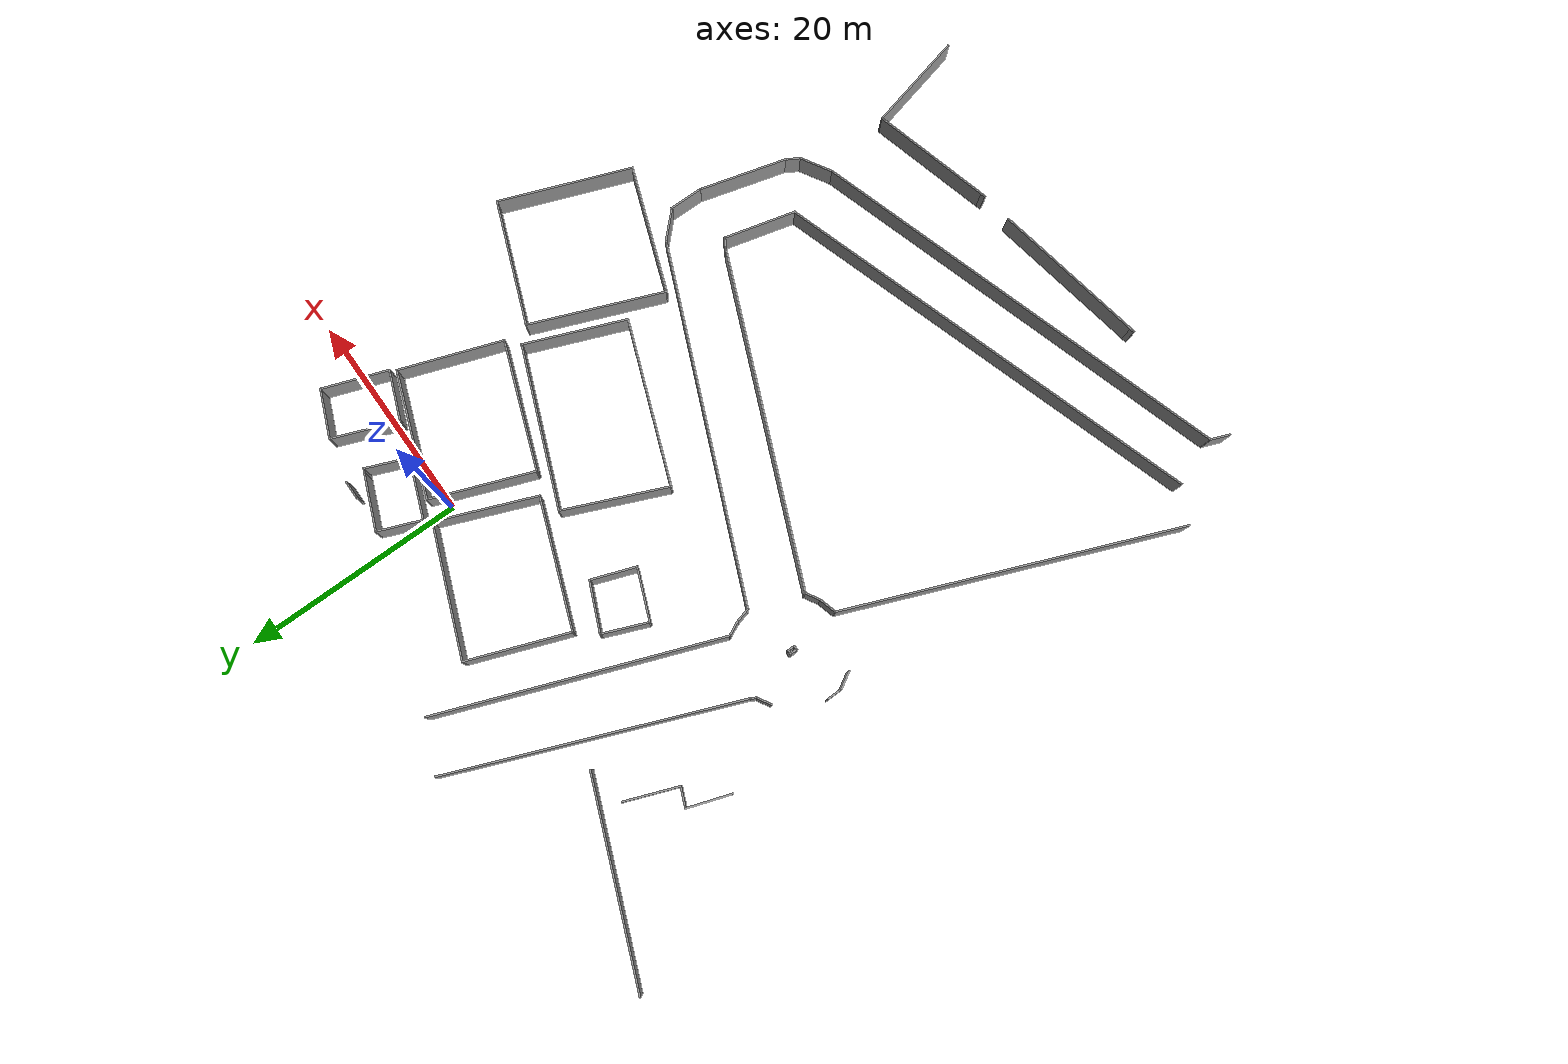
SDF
<sdf version="1.6">
 <model name="palazzo2">
  <pose>-3.81107 -3.99805 0 0 -0 0</pose>
  <link name="Wall_129">
   <collision name="Wall_129_Collision">
    <geometry><box><size>1.75 0.15 2.5</size></box></geometry>
    <pose>0 0 1.25 0 -0 0</pose>
   </collision>
   <visual name="Wall_129_Visual">
    <pose>0 0 1.25 0 -0 0</pose>
    <geometry><box><size>1.75 0.15 2.5</size></box></geometry>
    <material>
     <script><uri>file://media/materials/scripts/gazebo.material</uri><name>Gazebo/Grey</name></script>
     <ambient>1 1 1 1</ambient>
    </material>
    <meta><layer>0</layer></meta>
   </visual>
   <pose>9.46425 9.98705 0 0 -0 3.14159</pose>
  </link>
  <link name="Wall_164">
   <collision name="Wall_164_Collision">
    <geometry><box><size>25.8072 0.15 2.5</size></box></geometry>
    <pose>0 0 1.25 0 -0 0</pose>
   </collision>
   <visual name="Wall_164_Visual">
    <pose>0 0 1.25 0 -0 0</pose>
    <geometry><box><size>25.8072 0.15 2.5</size></box></geometry>
    <material>
     <script><uri>file://media/materials/scripts/gazebo.material</uri><name>Gazebo/Grey</name></script>
     <ambient>1 1 1 1</ambient>
    </material>
    <meta><layer>0</layer></meta>
   </visual>
   <pose>-14.7527 3.22891 0 0 -0 1.2068</pose>
  </link>
  <link name="Wall_166">
   <collision name="Wall_166_Collision">
    <geometry><box><size>26.3375 0.15 2.5</size></box></geometry>
    <pose>0 0 1.25 0 -0 0</pose>
   </collision>
   <visual name="Wall_166_Visual">
    <pose>0 0 1.25 0 -0 0</pose>
    <geometry><box><size>26.3375 0.15 2.5</size></box></geometry>
    <material>
     <script><uri>file://media/materials/scripts/gazebo.material</uri><name>Gazebo/Grey</name></script>
     <ambient>1 1 1 1</ambient>
    </material>
    <meta><layer>0</layer></meta>
   </visual>
   <pose>-19.5581 4.98848 0 0 -0 1.18688</pose>
  </link>
  <link name="Wall_169">
   <collision name="Wall_169_Collision">
    <geometry><box><size>1.5 0.15 2.5</size></box></geometry>
    <pose>0 0 1.25 0 -0 0</pose>
   </collision>
   <visual name="Wall_169_Visual">
    <pose>0 0 1.25 0 -0 0</pose>
    <geometry><box><size>1.5 0.15 2.5</size></box></geometry>
    <material>
     <script><uri>file://media/materials/scripts/gazebo.material</uri><name>Gazebo/Grey</name></script>
     <ambient>1 1 1 1</ambient>
    </material>
    <meta><layer>0</layer></meta>
   </visual>
   <pose>-18.5765 -10.6095 0 0 -0 1.8326</pose>
  </link>
  <link name="Wall_170">
   <collision name="Wall_170_Collision">
    <geometry><box><size>1.47641 0.15 2.5</size></box></geometry>
    <pose>0 0 1.25 0 -0 0</pose>
   </collision>
   <visual name="Wall_170_Visual">
    <pose>0 0 1.25 0 -0 0</pose>
    <geometry><box><size>1.47641 0.15 2.5</size></box></geometry>
    <material>
     <script><uri>file://media/materials/scripts/gazebo.material</uri><name>Gazebo/Grey</name></script>
     <ambient>1 1 1 1</ambient>
    </material>
    <meta><layer>0</layer></meta>
   </visual>
   <pose>-19.0355 -9.35834 0 0 -0 2.01381</pose>
  </link>
  <link name="Wall_172">
   <collision name="Wall_172_Collision">
    <geometry><box><size>33.7639 0.15 2.5</size></box></geometry>
    <pose>0 0 1.25 0 -0 0</pose>
   </collision>
   <visual name="Wall_172_Visual">
    <pose>0 0 1.25 0 -0 0</pose>
    <geometry><box><size>33.7639 0.15 2.5</size></box></geometry>
    <material>
     <script><uri>file://media/materials/scripts/gazebo.material</uri><name>Gazebo/Grey</name></script>
     <ambient>1 1 1 1</ambient>
    </material>
    <meta><layer>0</layer></meta>
   </visual>
   <pose>-2.99951 -17.9878 0 0 -0 2.72985</pose>
  </link>
  <link name="Wall_174">
   <collision name="Wall_174_Collision">
    <geometry><box><size>1.75 0.15 2.5</size></box></geometry>
    <pose>0 0 1.25 0 -0 0</pose>
   </collision>
   <visual name="Wall_174_Visual">
    <pose>0 0 1.25 0 -0 0</pose>
    <geometry><box><size>1.75 0.15 2.5</size></box></geometry>
    <material>
     <script><uri>file://media/materials/scripts/gazebo.material</uri><name>Gazebo/Grey</name></script>
     <ambient>1 1 1 1</ambient>
    </material>
    <meta><layer>0</layer></meta>
   </visual>
   <pose>-22.0611 -16.8174 0 0 -0 0.261799</pose>
  </link>
  <link name="Wall_175">
   <collision name="Wall_175_Collision">
    <geometry><box><size>1.5 0.15 2.5</size></box></geometry>
    <pose>0 0 1.25 0 -0 0</pose>
   </collision>
   <visual name="Wall_175_Visual">
    <pose>0 0 1.25 0 -0 0</pose>
    <geometry><box><size>1.5 0.15 2.5</size></box></geometry>
    <material>
     <script><uri>file://media/materials/scripts/gazebo.material</uri><name>Gazebo/Grey</name></script>
     <ambient>1 1 1 1</ambient>
    </material>
    <meta><layer>0</layer></meta>
   </visual>
   <pose>-20.7038 -16.2728 0 0 -0 0.523599</pose>
  </link>
  <link name="Wall_177">
   <collision name="Wall_177_Collision">
    <geometry><box><size>31.4883 0.15 2.5</size></box></geometry>
    <pose>0 0 1.25 0 -0 0</pose>
   </collision>
   <visual name="Wall_177_Visual">
    <pose>0 0 1.25 0 -0 0</pose>
    <geometry><box><size>31.4883 0.15 2.5</size></box></geometry>
    <material>
     <script><uri>file://media/materials/scripts/gazebo.material</uri><name>Gazebo/Grey</name></script>
     <ambient>1 1 1 1</ambient>
    </material>
    <meta><layer>0</layer></meta>
   </visual>
   <pose>-5.76607 -22.2208 0 0 -0 2.72883</pose>
  </link>
  <link name="Wall_179">
   <collision name="Wall_179_Collision">
    <geometry><box><size>1.25 0.15 2.5</size></box></geometry>
    <pose>0 0 1.25 0 -0 0</pose>
   </collision>
   <visual name="Wall_179_Visual">
    <pose>0 0 1.25 0 -0 0</pose>
    <geometry><box><size>1.25 0.15 2.5</size></box></geometry>
    <material>
     <script><uri>file://media/materials/scripts/gazebo.material</uri><name>Gazebo/Grey</name></script>
     <ambient>1 1 1 1</ambient>
    </material>
    <meta><layer>0</layer></meta>
   </visual>
   <pose>9.06344 -28.7813 0 0 -0 -0.523599</pose>
  </link>
  <link name="Wall_181">
   <collision name="Wall_181_Collision">
    <geometry><box><size>6.84317 0.15 2.5</size></box></geometry>
    <pose>0 0 1.25 0 -0 0</pose>
   </collision>
   <visual name="Wall_181_Visual">
    <pose>0 0 1.25 0 -0 0</pose>
    <geometry><box><size>6.84317 0.15 2.5</size></box></geometry>
    <material>
     <script><uri>file://media/materials/scripts/gazebo.material</uri><name>Gazebo/Grey</name></script>
     <ambient>1 1 1 1</ambient>
    </material>
    <meta><layer>0</layer></meta>
   </visual>
   <pose>8.72373 -32.3019 0 0 -0 1.32448</pose>
  </link>
  <link name="Wall_183">
   <collision name="Wall_183_Collision">
    <geometry><box><size>3.25 0.15 2.5</size></box></geometry>
    <pose>0 0 1.25 0 -0 0</pose>
   </collision>
   <visual name="Wall_183_Visual">
    <pose>0 0 1.25 0 -0 0</pose>
    <geometry><box><size>3.25 0.15 2.5</size></box></geometry>
    <material>
     <script><uri>file://media/materials/scripts/gazebo.material</uri><name>Gazebo/Grey</name></script>
     <ambient>1 1 1 1</ambient>
    </material>
    <meta><layer>0</layer></meta>
   </visual>
   <pose>13.4988 -25.8101 0 0 -0 -0.785398</pose>
  </link>
  <link name="Wall_186">
   <collision name="Wall_186_Collision">
    <geometry><box><size>3.25 0.15 2.5</size></box></geometry>
    <pose>0 0 1.25 0 -0 0</pose>
   </collision>
   <visual name="Wall_186_Visual">
    <pose>0 0 1.25 0 -0 0</pose>
    <geometry><box><size>3.25 0.15 2.5</size></box></geometry>
    <material>
     <script><uri>file://media/materials/scripts/gazebo.material</uri><name>Gazebo/Grey</name></script>
     <ambient>1 1 1 1</ambient>
    </material>
    <meta><layer>0</layer></meta>
   </visual>
   <pose>14.5948 -28.4562 0 0 -0 -1.5708</pose>
  </link>
  <link name="Wall_188">
   <collision name="Wall_188_Collision">
    <geometry><box><size>8.31738 0.15 2.5</size></box></geometry>
    <pose>0 0 1.25 0 -0 0</pose>
   </collision>
   <visual name="Wall_188_Visual">
    <pose>0 0 1.25 0 -0 0</pose>
    <geometry><box><size>8.31738 0.15 2.5</size></box></geometry>
    <material>
     <script><uri>file://media/materials/scripts/gazebo.material</uri><name>Gazebo/Grey</name></script>
     <ambient>1 1 1 1</ambient>
    </material>
    <meta><layer>0</layer></meta>
   </visual>
   <pose>13.5365 -33.9504 0 0 -0 1.30866</pose>
  </link>
  <link name="Wall_193">
   <collision name="Wall_193_Collision">
    <geometry><box><size>1.5 0.15 2.5</size></box></geometry>
    <pose>0 0 1.25 0 -0 0</pose>
   </collision>
   <visual name="Wall_193_Visual">
    <pose>0 0 1.25 0 -0 0</pose>
    <geometry><box><size>1.5 0.15 2.5</size></box></geometry>
    <material>
     <script><uri>file://media/materials/scripts/gazebo.material</uri><name>Gazebo/Grey</name></script>
     <ambient>1 1 1 1</ambient>
    </material>
    <meta><layer>0</layer></meta>
   </visual>
   <pose>12.1408 -38.4791 0 0 -0 -2.0944</pose>
  </link>
  <link name="Wall_194">
   <collision name="Wall_194_Collision">
    <geometry><box><size>3.25 0.15 2.5</size></box></geometry>
    <pose>0 0 1.25 0 -0 0</pose>
   </collision>
   <visual name="Wall_194_Visual">
    <pose>0 0 1.25 0 -0 0</pose>
    <geometry><box><size>3.25 0.15 2.5</size></box></geometry>
    <material>
     <script><uri>file://media/materials/scripts/gazebo.material</uri><name>Gazebo/Grey</name></script>
     <ambient>1 1 1 1</ambient>
    </material>
    <meta><layer>0</layer></meta>
   </visual>
   <pose>10.4609 -39.8387 0 0 -0 -2.61799</pose>
  </link>
  <link name="Wall_196">
   <collision name="Wall_196_Collision">
    <geometry><box><size>40.6217 0.15 2.5</size></box></geometry>
    <pose>0 0 1.25 0 -0 0</pose>
   </collision>
   <visual name="Wall_196_Visual">
    <pose>0 0 1.25 0 -0 0</pose>
    <geometry><box><size>40.6217 0.15 2.5</size></box></geometry>
    <material>
     <script><uri>file://media/materials/scripts/gazebo.material</uri><name>Gazebo/Grey</name></script>
     <ambient>1 1 1 1</ambient>
    </material>
    <meta><layer>0</layer></meta>
   </visual>
   <pose>-10.3171 -46.2477 0 0 -0 0.282148</pose>
  </link>
  <link name="Wall_198">
   <collision name="Wall_198_Collision">
    <geometry><box><size>41.1187 0.15 2.5</size></box></geometry>
    <pose>0 0 1.25 0 -0 0</pose>
   </collision>
   <visual name="Wall_198_Visual">
    <pose>0 0 1.25 0 -0 0</pose>
    <geometry><box><size>41.1187 0.15 2.5</size></box></geometry>
    <material>
     <script><uri>file://media/materials/scripts/gazebo.material</uri><name>Gazebo/Grey</name></script>
     <ambient>1 1 1 1</ambient>
    </material>
    <meta><layer>0</layer></meta>
   </visual>
   <pose>-11.708 -41.4495 0 0 -0 0.292263</pose>
  </link>
  <link name="Wall_203">
   <collision name="Wall_203_Collision">
    <geometry><box><size>30.9517 0.15 2.5</size></box></geometry>
    <pose>0 0 1.25 0 -0 0</pose>
   </collision>
   <visual name="Wall_203_Visual">
    <pose>0 0 1.25 0 -0 0</pose>
    <geometry><box><size>30.9517 0.15 2.5</size></box></geometry>
    <material>
     <script><uri>file://media/materials/scripts/gazebo.material</uri><name>Gazebo/Grey</name></script>
     <ambient>1 1 1 1</ambient>
    </material>
    <meta><layer>0</layer></meta>
   </visual>
   <pose>-28.6263 -31.2945 0 0 -0 1.1852</pose>
  </link>
  <link name="Wall_206">
   <collision name="Wall_206_Collision">
    <geometry><box><size>1.5 0.15 2.5</size></box></geometry>
    <pose>0 0 1.25 0 -0 0</pose>
   </collision>
   <visual name="Wall_206_Visual">
    <pose>0 0 1.25 0 -0 0</pose>
    <geometry><box><size>1.5 0.15 2.5</size></box></geometry>
    <material>
     <script><uri>file://media/materials/scripts/gazebo.material</uri><name>Gazebo/Grey</name></script>
     <ambient>1 1 1 1</ambient>
    </material>
    <meta><layer>0</layer></meta>
   </visual>
   <pose>-25.2953 -7.91 0 0 -0 0.523599</pose>
  </link>
  <link name="Wall_208">
   <collision name="Wall_208_Collision">
    <geometry><box><size>0.638277 0.15 2.5</size></box></geometry>
    <pose>0 0 1.25 0 -0 0</pose>
   </collision>
   <visual name="Wall_208_Visual">
    <pose>0 0 1.25 0 -0 0</pose>
    <geometry><box><size>0.638277 0.15 2.5</size></box></geometry>
    <material>
     <script><uri>file://media/materials/scripts/gazebo.material</uri><name>Gazebo/Grey</name></script>
     <ambient>1 1 1 1</ambient>
    </material>
    <meta><layer>0</layer></meta>
   </visual>
   <pose>-24.5865 -7.3623 0 0 -0 1.03724</pose>
  </link>
  <link name="Wall_217">
   <collision name="Wall_217_Collision">
    <geometry><box><size>1.75 0.15 2.5</size></box></geometry>
    <pose>0 0 1.25 0 -0 0</pose>
   </collision>
   <visual name="Wall_217_Visual">
    <pose>0 0 1.25 0 -0 0</pose>
    <geometry><box><size>1.75 0.15 2.5</size></box></geometry>
    <material>
     <script><uri>file://media/materials/scripts/gazebo.material</uri><name>Gazebo/Grey</name></script>
     <ambient>1 1 1 1</ambient>
    </material>
    <meta><layer>0</layer></meta>
   </visual>
   <pose>-27.8139 -14.302 0 0 -0 2.0944</pose>
  </link>
  <link name="Wall_218">
   <collision name="Wall_218_Collision">
    <geometry><box><size>1.5 0.15 2.5</size></box></geometry>
    <pose>0 0 1.25 0 -0 0</pose>
   </collision>
   <visual name="Wall_218_Visual">
    <pose>0 0 1.25 0 -0 0</pose>
    <geometry><box><size>1.5 0.15 2.5</size></box></geometry>
    <material>
     <script><uri>file://media/materials/scripts/gazebo.material</uri><name>Gazebo/Grey</name></script>
     <ambient>1 1 1 1</ambient>
    </material>
    <meta><layer>0</layer></meta>
   </visual>
   <pose>-28.214 -12.9342 0 0 -0 1.5708</pose>
  </link>
  <link name="Wall_236">
   <collision name="Wall_236_Collision">
    <geometry><box><size>0.5 0.15 2.5</size></box></geometry>
    <pose>0 0 1.25 0 -0 0</pose>
   </collision>
   <visual name="Wall_236_Visual">
    <pose>0 0 1.25 0 -0 0</pose>
    <geometry><box><size>0.5 0.15 2.5</size></box></geometry>
    <material>
     <script><uri>file://media/materials/scripts/gazebo.material</uri><name>Gazebo/Grey</name></script>
     <ambient>1 1 1 1</ambient>
    </material>
    <meta><layer>0</layer></meta>
   </visual>
   <pose>-23.2961 -11.9622 0 0 -0 0</pose>
  </link>
  <link name="Wall_237">
   <collision name="Wall_237_Collision">
    <geometry><box><size>0.75 0.15 2.5</size></box></geometry>
    <pose>0 0 1.25 0 -0 0</pose>
   </collision>
   <visual name="Wall_237_Visual">
    <pose>0 0 1.25 0 -0 0</pose>
    <geometry><box><size>0.75 0.15 2.5</size></box></geometry>
    <material>
     <script><uri>file://media/materials/scripts/gazebo.material</uri><name>Gazebo/Grey</name></script>
     <ambient>1 1 1 1</ambient>
    </material>
    <meta><layer>0</layer></meta>
   </visual>
   <pose>-23.1211 -12.2622 0 0 -0 -1.5708</pose>
  </link>
  <link name="Wall_238">
   <collision name="Wall_238_Collision">
    <geometry><box><size>0.5 0.15 2.5</size></box></geometry>
    <pose>0 0 1.25 0 -0 0</pose>
   </collision>
   <visual name="Wall_238_Visual">
    <pose>0 0 1.25 0 -0 0</pose>
    <geometry><box><size>0.5 0.15 2.5</size></box></geometry>
    <material>
     <script><uri>file://media/materials/scripts/gazebo.material</uri><name>Gazebo/Grey</name></script>
     <ambient>1 1 1 1</ambient>
    </material>
    <meta><layer>0</layer></meta>
   </visual>
   <pose>-23.2961 -12.5622 0 0 -0 3.14159</pose>
  </link>
  <link name="Wall_239">
   <collision name="Wall_239_Collision">
    <geometry><box><size>0.75 0.15 2.5</size></box></geometry>
    <pose>0 0 1.25 0 -0 0</pose>
   </collision>
   <visual name="Wall_239_Visual">
    <pose>0 0 1.25 0 -0 0</pose>
    <geometry><box><size>0.75 0.15 2.5</size></box></geometry>
    <material>
     <script><uri>file://media/materials/scripts/gazebo.material</uri><name>Gazebo/Grey</name></script>
     <ambient>1 1 1 1</ambient>
    </material>
    <meta><layer>0</layer></meta>
   </visual>
   <pose>-23.4711 -12.2622 0 0 -0 1.5708</pose>
  </link>
  <link name="Wall_294">
   <collision name="Wall_294_Collision">
    <geometry><box><size>1.90529 0.15 2.5</size></box></geometry>
    <pose>0 0 1.25 0 -0 0</pose>
   </collision>
   <visual name="Wall_294_Visual">
    <pose>0 0 1.25 0 -0 0</pose>
    <geometry><box><size>1.90529 0.15 2.5</size></box></geometry>
    <material>
     <script><uri>file://media/materials/scripts/gazebo.material</uri><name>Gazebo/Grey</name></script>
     <ambient>1 1 1 1</ambient>
    </material>
    <meta><layer>0</layer></meta>
   </visual>
   <pose>-30.0784 -52.6968 0 0 -0 1.19074</pose>
  </link>
  <link name="Wall_527">
   <collision name="Wall_527_Collision">
    <geometry><box><size>0.25 0.15 2.5</size></box></geometry>
    <pose>0 0 1.25 0 -0 0</pose>
   </collision>
   <visual name="Wall_527_Visual">
    <pose>0 0 1.25 0 -0 0</pose>
    <geometry><box><size>0.25 0.15 2.5</size></box></geometry>
    <material>
     <script><uri>file://media/materials/scripts/gazebo.material</uri><name>Gazebo/Grey</name></script>
     <ambient>1 1 1 1</ambient>
    </material>
    <meta><layer>0</layer></meta>
   </visual>
   <pose>14.401 9.09696 0 0 -0 -0.261799</pose>
  </link>
  <link name="Wall_529">
   <collision name="Wall_529_Collision">
    <geometry><box><size>4.72201 0.15 2.5</size></box></geometry>
    <pose>0 0 1.25 0 -0 0</pose>
   </collision>
   <visual name="Wall_529_Visual">
    <pose>0 0 1.25 0 -0 0</pose>
    <geometry><box><size>4.72201 0.15 2.5</size></box></geometry>
    <material>
     <script><uri>file://media/materials/scripts/gazebo.material</uri><name>Gazebo/Grey</name></script>
     <ambient>1 1 1 1</ambient>
    </material>
    <meta><layer>0</layer></meta>
   </visual>
   <pose>16.472 8.25292 0 0 -0 2.75732</pose>
  </link>
  <link name="Wall_531">
   <collision name="Wall_531_Collision">
    <geometry><box><size>6.245 0.15 2.5</size></box></geometry>
    <pose>0 0 1.25 0 -0 0</pose>
   </collision>
   <visual name="Wall_531_Visual">
    <pose>0 0 1.25 0 -0 0</pose>
    <geometry><box><size>6.245 0.15 2.5</size></box></geometry>
    <material>
     <script><uri>file://media/materials/scripts/gazebo.material</uri><name>Gazebo/Grey</name></script>
     <ambient>1 1 1 1</ambient>
    </material>
    <meta><layer>0</layer></meta>
   </visual>
   <pose>17.5722 4.52389 0 0 -0 1.22982</pose>
  </link>
  <link name="Wall_533">
   <collision name="Wall_533_Collision">
    <geometry><box><size>6.29627 0.15 2.5</size></box></geometry>
    <pose>0 0 1.25 0 -0 0</pose>
   </collision>
   <visual name="Wall_533_Visual">
    <pose>0 0 1.25 0 -0 0</pose>
    <geometry><box><size>6.29627 0.15 2.5</size></box></geometry>
    <material>
     <script><uri>file://media/materials/scripts/gazebo.material</uri><name>Gazebo/Grey</name></script>
     <ambient>1 1 1 1</ambient>
    </material>
    <meta><layer>0</layer></meta>
   </visual>
   <pose>13.2294 6.24944 0 0 -0 1.19659</pose>
  </link>
  <link name="Wall_535">
   <collision name="Wall_535_Collision">
    <geometry><box><size>4.92429 0.15 2.5</size></box></geometry>
    <pose>0 0 1.25 0 -0 0</pose>
   </collision>
   <visual name="Wall_535_Visual">
    <pose>0 0 1.25 0 -0 0</pose>
    <geometry><box><size>4.92429 0.15 2.5</size></box></geometry>
    <material>
     <script><uri>file://media/materials/scripts/gazebo.material</uri><name>Gazebo/Grey</name></script>
     <ambient>1 1 1 1</ambient>
    </material>
    <meta><layer>0</layer></meta>
   </visual>
   <pose>14.3296 2.5204 0 0 -0 -0.372398</pose>
  </link>
  <link name="Wall_540">
   <collision name="Wall_540_Collision">
    <geometry><box><size>5.33922 0.15 2.5</size></box></geometry>
    <pose>0 0 1.25 0 -0 0</pose>
   </collision>
   <visual name="Wall_540_Visual">
    <pose>0 0 1.25 0 -0 0</pose>
    <geometry><box><size>5.33922 0.15 2.5</size></box></geometry>
    <material>
     <script><uri>file://media/materials/scripts/gazebo.material</uri><name>Gazebo/Grey</name></script>
     <ambient>1 1 1 1</ambient>
    </material>
    <meta><layer>0</layer></meta>
   </visual>
   <pose>7.61424 9.28458 0 0 -0 2.76248</pose>
  </link>
  <link name="Wall_543">
   <collision name="Wall_543_Collision">
    <geometry><box><size>4.21504 0.15 2.5</size></box></geometry>
    <pose>0 0 1.25 0 -0 0</pose>
   </collision>
   <visual name="Wall_543_Visual">
    <pose>0 0 1.25 0 -0 0</pose>
    <geometry><box><size>4.21504 0.15 2.5</size></box></geometry>
    <material>
     <script><uri>file://media/materials/scripts/gazebo.material</uri><name>Gazebo/Grey</name></script>
     <ambient>1 1 1 1</ambient>
    </material>
    <meta><layer>0</layer></meta>
   </visual>
   <pose>4.44922 8.35759 0 0 -0 1.1904</pose>
  </link>
  <link name="Wall_545">
   <collision name="Wall_545_Collision">
    <geometry><box><size>0.58298 0.15 2.5</size></box></geometry>
    <pose>0 0 1.25 0 -0 0</pose>
   </collision>
   <visual name="Wall_545_Visual">
    <pose>0 0 1.25 0 -0 0</pose>
    <geometry><box><size>0.58298 0.15 2.5</size></box></geometry>
    <material>
     <script><uri>file://media/materials/scripts/gazebo.material</uri><name>Gazebo/Grey</name></script>
     <ambient>1 1 1 1</ambient>
    </material>
    <meta><layer>0</layer></meta>
   </visual>
   <pose>10.2233 8.23826 0 0 -0 2.73269</pose>
  </link>
  <link name="Wall_547">
   <collision name="Wall_547_Collision">
    <geometry><box><size>4.124 0.15 2.5</size></box></geometry>
    <pose>0 0 1.25 0 -0 0</pose>
   </collision>
   <visual name="Wall_547_Visual">
    <pose>0 0 1.25 0 -0 0</pose>
    <geometry><box><size>4.124 0.15 2.5</size></box></geometry>
    <material>
     <script><uri>file://media/materials/scripts/gazebo.material</uri><name>Gazebo/Grey</name></script>
     <ambient>1 1 1 1</ambient>
    </material>
    <meta><layer>0</layer></meta>
   </visual>
   <pose>9.67369 6.31144 0 0 -0 1.18472</pose>
  </link>
  <link name="Wall_549">
   <collision name="Wall_549_Collision">
    <geometry><box><size>5.75008 0.15 2.5</size></box></geometry>
    <pose>0 0 1.25 0 -0 0</pose>
   </collision>
   <visual name="Wall_549_Visual">
    <pose>0 0 1.25 0 -0 0</pose>
    <geometry><box><size>5.75008 0.15 2.5</size></box></geometry>
    <material>
     <script><uri>file://media/materials/scripts/gazebo.material</uri><name>Gazebo/Grey</name></script>
     <ambient>1 1 1 1</ambient>
    </material>
    <meta><layer>0</layer></meta>
   </visual>
   <pose>6.31003 5.47053 0 0 -0 -0.365136</pose>
  </link>
  <link name="Wall_551">
   <collision name="Wall_551_Collision">
    <geometry><box><size>0.5 0.15 2.5</size></box></geometry>
    <pose>0 0 1.25 0 -0 0</pose>
   </collision>
   <visual name="Wall_551_Visual">
    <pose>0 0 1.25 0 -0 0</pose>
    <geometry><box><size>0.5 0.15 2.5</size></box></geometry>
    <material>
     <script><uri>file://media/materials/scripts/gazebo.material</uri><name>Gazebo/Grey</name></script>
     <ambient>1 1 1 1</ambient>
    </material>
    <meta><layer>0</layer></meta>
   </visual>
   <pose>16.0135 1.22377 0 0 -0 2.61799</pose>
  </link>
  <link name="Wall_553">
   <collision name="Wall_553_Collision">
    <geometry><box><size>12.0411 0.15 2.5</size></box></geometry>
    <pose>0 0 1.25 0 -0 0</pose>
   </collision>
   <visual name="Wall_553_Visual">
    <pose>0 0 1.25 0 -0 0</pose>
    <geometry><box><size>12.0411 0.15 2.5</size></box></geometry>
    <material>
     <script><uri>file://media/materials/scripts/gazebo.material</uri><name>Gazebo/Grey</name></script>
     <ambient>1 1 1 1</ambient>
    </material>
    <meta><layer>0</layer></meta>
   </visual>
   <pose>10.587 3.19411 0 0 -0 -0.353427</pose>
  </link>
  <link name="Wall_555">
   <collision name="Wall_555_Collision">
    <geometry><box><size>9.66734 0.15 2.5</size></box></geometry>
    <pose>0 0 1.25 0 -0 0</pose>
   </collision>
   <visual name="Wall_555_Visual">
    <pose>0 0 1.25 0 -0 0</pose>
    <geometry><box><size>9.66734 0.15 2.5</size></box></geometry>
    <material>
     <script><uri>file://media/materials/scripts/gazebo.material</uri><name>Gazebo/Grey</name></script>
     <ambient>1 1 1 1</ambient>
    </material>
    <meta><layer>0</layer></meta>
   </visual>
   <pose>3.31884 0.803509 0 0 -0 1.20772</pose>
  </link>
  <link name="Wall_557">
   <collision name="Wall_557_Collision">
    <geometry><box><size>9.72684 0.15 2.5</size></box></geometry>
    <pose>0 0 1.25 0 -0 0</pose>
   </collision>
   <visual name="Wall_557_Visual">
    <pose>0 0 1.25 0 -0 0</pose>
    <geometry><box><size>9.72684 0.15 2.5</size></box></geometry>
    <material>
     <script><uri>file://media/materials/scripts/gazebo.material</uri><name>Gazebo/Grey</name></script>
     <ambient>1 1 1 1</ambient>
    </material>
    <meta><layer>0</layer></meta>
   </visual>
   <pose>14.5801 -3.38223 0 0 -0 1.23343</pose>
  </link>
  <link name="Wall_559">
   <collision name="Wall_559_Collision">
    <geometry><box><size>12.2869 0.15 2.5</size></box></geometry>
    <pose>0 0 1.25 0 -0 0</pose>
   </collision>
   <visual name="Wall_559_Visual">
    <pose>0 0 1.25 0 -0 0</pose>
    <geometry><box><size>12.2869 0.15 2.5</size></box></geometry>
    <material>
     <script><uri>file://media/materials/scripts/gazebo.material</uri><name>Gazebo/Grey</name></script>
     <ambient>1 1 1 1</ambient>
    </material>
    <meta><layer>0</layer></meta>
   </visual>
   <pose>7.31194 -5.77283 0 0 -0 -0.358264</pose>
  </link>
  <link name="Wall_561">
   <collision name="Wall_561_Collision">
    <geometry><box><size>0.25 0.15 2.5</size></box></geometry>
    <pose>0 0 1.25 0 -0 0</pose>
   </collision>
   <visual name="Wall_561_Visual">
    <pose>0 0 1.25 0 -0 0</pose>
    <geometry><box><size>0.25 0.15 2.5</size></box></geometry>
    <material>
     <script><uri>file://media/materials/scripts/gazebo.material</uri><name>Gazebo/Grey</name></script>
     <ambient>1 1 1 1</ambient>
    </material>
    <meta><layer>0</layer></meta>
   </visual>
   <pose>3.09165 5.94247 0 0 -0 2.61799</pose>
  </link>
  <link name="Wall_563">
   <collision name="Wall_563_Collision">
    <geometry><box><size>9.37645 0.15 2.5</size></box></geometry>
    <pose>0 0 1.25 0 -0 0</pose>
   </collision>
   <visual name="Wall_563_Visual">
    <pose>0 0 1.25 0 -0 0</pose>
    <geometry><box><size>9.37645 0.15 2.5</size></box></geometry>
    <material>
     <script><uri>file://media/materials/scripts/gazebo.material</uri><name>Gazebo/Grey</name></script>
     <ambient>1 1 1 1</ambient>
    </material>
    <meta><layer>0</layer></meta>
   </visual>
   <pose>1.41862 1.6354 0 0 -0 1.18958</pose>
  </link>
  <link name="Wall_565">
   <collision name="Wall_565_Collision">
    <geometry><box><size>12.1005 0.15 2.5</size></box></geometry>
    <pose>0 0 1.25 0 -0 0</pose>
   </collision>
   <visual name="Wall_565_Visual">
    <pose>0 0 1.25 0 -0 0</pose>
    <geometry><box><size>12.1005 0.15 2.5</size></box></geometry>
    <material>
     <script><uri>file://media/materials/scripts/gazebo.material</uri><name>Gazebo/Grey</name></script>
     <ambient>1 1 1 1</ambient>
    </material>
    <meta><layer>0</layer></meta>
   </visual>
   <pose>-5.88453 -0.527521 0 0 -0 -0.362544</pose>
  </link>
  <link name="Wall_568">
   <collision name="Wall_568_Collision">
    <geometry><box><size>12.2941 0.15 2.5</size></box></geometry>
    <pose>0 0 1.25 0 -0 0</pose>
   </collision>
   <visual name="Wall_568_Visual">
    <pose>0 0 1.25 0 -0 0</pose>
    <geometry><box><size>12.2941 0.15 2.5</size></box></geometry>
    <material>
     <script><uri>file://media/materials/scripts/gazebo.material</uri><name>Gazebo/Grey</name></script>
     <ambient>1 1 1 1</ambient>
    </material>
    <meta><layer>0</layer></meta>
   </visual>
   <pose>-2.52193 8.12418 0 0 -0 -0.371937</pose>
  </link>
  <link name="Wall_570">
   <collision name="Wall_570_Collision">
    <geometry><box><size>9.48893 0.15 2.5</size></box></geometry>
    <pose>0 0 1.25 0 -0 0</pose>
   </collision>
   <visual name="Wall_570_Visual">
    <pose>0 0 1.25 0 -0 0</pose>
    <geometry><box><size>9.48893 0.15 2.5</size></box></geometry>
    <material>
     <script><uri>file://media/materials/scripts/gazebo.material</uri><name>Gazebo/Grey</name></script>
     <ambient>1 1 1 1</ambient>
    </material>
    <meta><layer>0</layer></meta>
   </visual>
   <pose>-9.82508 5.96125 0 0 -0 1.21049</pose>
  </link>
  <link name="Wall_572">
   <collision name="Wall_572_Collision">
    <geometry><box><size>0.25 0.15 2.5</size></box></geometry>
    <pose>0 0 1.25 0 -0 0</pose>
   </collision>
   <visual name="Wall_572_Visual">
    <pose>0 0 1.25 0 -0 0</pose>
    <geometry><box><size>0.25 0.15 2.5</size></box></geometry>
    <material>
     <script><uri>file://media/materials/scripts/gazebo.material</uri><name>Gazebo/Grey</name></script>
     <ambient>1 1 1 1</ambient>
    </material>
    <meta><layer>0</layer></meta>
   </visual>
   <pose>-12.8901 -0.163215 0 0 -0 -0.261799</pose>
  </link>
  <link name="Wall_574">
   <collision name="Wall_574_Collision">
    <geometry><box><size>4.76736 0.15 2.5</size></box></geometry>
    <pose>0 0 1.25 0 -0 0</pose>
   </collision>
   <visual name="Wall_574_Visual">
    <pose>0 0 1.25 0 -0 0</pose>
    <geometry><box><size>4.76736 0.15 2.5</size></box></geometry>
    <material>
     <script><uri>file://media/materials/scripts/gazebo.material</uri><name>Gazebo/Grey</name></script>
     <ambient>1 1 1 1</ambient>
    </material>
    <meta><layer>0</layer></meta>
   </visual>
   <pose>-10.8215 -1.07164 0 0 -0 2.73107</pose>
  </link>
  <link name="Wall_576">
   <collision name="Wall_576_Collision">
    <geometry><box><size>4.36386 0.15 2.5</size></box></geometry>
    <pose>0 0 1.25 0 -0 0</pose>
   </collision>
   <visual name="Wall_576_Visual">
    <pose>0 0 1.25 0 -0 0</pose>
    <geometry><box><size>4.36386 0.15 2.5</size></box></geometry>
    <material>
     <script><uri>file://media/materials/scripts/gazebo.material</uri><name>Gazebo/Grey</name></script>
     <ambient>1 1 1 1</ambient>
    </material>
    <meta><layer>0</layer></meta>
   </visual>
   <pose>-13.7379 -2.09961 0 0 -0 1.18156</pose>
  </link>
  <link name="Wall_578">
   <collision name="Wall_578_Collision">
    <geometry><box><size>4.26413 0.15 2.5</size></box></geometry>
    <pose>0 0 1.25 0 -0 0</pose>
   </collision>
   <visual name="Wall_578_Visual">
    <pose>0 0 1.25 0 -0 0</pose>
    <geometry><box><size>4.26413 0.15 2.5</size></box></geometry>
    <material>
     <script><uri>file://media/materials/scripts/gazebo.material</uri><name>Gazebo/Grey</name></script>
     <ambient>1 1 1 1</ambient>
    </material>
    <meta><layer>0</layer></meta>
   </visual>
   <pose>-9.4052 -3.92711 0 0 -0 1.22329</pose>
  </link>
  <link name="Wall_580">
   <collision name="Wall_580_Collision">
    <geometry><box><size>4.93792 0.15 2.5</size></box></geometry>
    <pose>0 0 1.25 0 -0 0</pose>
   </collision>
   <visual name="Wall_580_Visual">
    <pose>0 0 1.25 0 -0 0</pose>
    <geometry><box><size>4.93792 0.15 2.5</size></box></geometry>
    <material>
     <script><uri>file://media/materials/scripts/gazebo.material</uri><name>Gazebo/Grey</name></script>
     <ambient>1 1 1 1</ambient>
    </material>
    <meta><layer>0</layer></meta>
   </visual>
   <pose>-12.3216 -4.95508 0 0 -0 -0.388185</pose>
  </link>
  <link name="Wall_582">
   <collision name="Wall_582_Collision">
    <geometry><box><size>0.25 0.15 2.5</size></box></geometry>
    <pose>0 0 1.25 0 -0 0</pose>
   </collision>
   <visual name="Wall_582_Visual">
    <pose>0 0 1.25 0 -0 0</pose>
    <geometry><box><size>0.25 0.15 2.5</size></box></geometry>
    <material>
     <script><uri>file://media/materials/scripts/gazebo.material</uri><name>Gazebo/Grey</name></script>
     <ambient>1 1 1 1</ambient>
    </material>
    <meta><layer>0</layer></meta>
   </visual>
   <pose>11.7534 -8.89493 0 0 -0 2.61799</pose>
  </link>
  <link name="Wall_584">
   <collision name="Wall_584_Collision">
    <geometry><box><size>15.3681 0.15 2.5</size></box></geometry>
    <pose>0 0 1.25 0 -0 0</pose>
   </collision>
   <visual name="Wall_584_Visual">
    <pose>0 0 1.25 0 -0 0</pose>
    <geometry><box><size>15.3681 0.15 2.5</size></box></geometry>
    <material>
     <script><uri>file://media/materials/scripts/gazebo.material</uri><name>Gazebo/Grey</name></script>
     <ambient>1 1 1 1</ambient>
    </material>
    <meta><layer>0</layer></meta>
   </visual>
   <pose>4.73743 -6.08011 0 0 -0 -0.382472</pose>
  </link>
  <link name="Wall_586">
   <collision name="Wall_586_Collision">
    <geometry><box><size>9.83978 0.15 2.5</size></box></geometry>
    <pose>0 0 1.25 0 -0 0</pose>
   </collision>
   <visual name="Wall_586_Visual">
    <pose>0 0 1.25 0 -0 0</pose>
    <geometry><box><size>9.83978 0.15 2.5</size></box></geometry>
    <material>
     <script><uri>file://media/materials/scripts/gazebo.material</uri><name>Gazebo/Grey</name></script>
     <ambient>1 1 1 1</ambient>
    </material>
    <meta><layer>0</layer></meta>
   </visual>
   <pose>-4.23521 -7.69135 0 0 -0 1.16481</pose>
  </link>
  <link name="Wall_588">
   <collision name="Wall_588_Collision">
    <geometry><box><size>9.64218 0.15 2.5</size></box></geometry>
    <pose>0 0 1.25 0 -0 0</pose>
   </collision>
   <visual name="Wall_588_Visual">
    <pose>0 0 1.25 0 -0 0</pose>
    <geometry><box><size>9.64218 0.15 2.5</size></box></geometry>
    <material>
     <script><uri>file://media/materials/scripts/gazebo.material</uri><name>Gazebo/Grey</name></script>
     <ambient>1 1 1 1</ambient>
    </material>
    <meta><layer>0</layer></meta>
   </visual>
   <pose>10.0445 -13.3307 0 0 -0 1.19265</pose>
  </link>
  <link name="Wall_590">
   <collision name="Wall_590_Collision">
    <geometry><box><size>15.6383 0.15 2.5</size></box></geometry>
    <pose>0 0 1.25 0 -0 0</pose>
   </collision>
   <visual name="Wall_590_Visual">
    <pose>0 0 1.25 0 -0 0</pose>
    <geometry><box><size>15.6383 0.15 2.5</size></box></geometry>
    <material>
     <script><uri>file://media/materials/scripts/gazebo.material</uri><name>Gazebo/Grey</name></script>
     <ambient>1 1 1 1</ambient>
    </material>
    <meta><layer>0</layer></meta>
   </visual>
   <pose>1.07184 -14.942 0 0 -0 -0.369881</pose>
  </link>
  <link name="Wall_592">
   <collision name="Wall_592_Collision">
    <geometry><box><size>0.25 0.15 2.5</size></box></geometry>
    <pose>0 0 1.25 0 -0 0</pose>
   </collision>
   <visual name="Wall_592_Visual">
    <pose>0 0 1.25 0 -0 0</pose>
    <geometry><box><size>0.25 0.15 2.5</size></box></geometry>
    <material>
     <script><uri>file://media/materials/scripts/gazebo.material</uri><name>Gazebo/Grey</name></script>
     <ambient>1 1 1 1</ambient>
    </material>
    <meta><layer>0</layer></meta>
   </visual>
   <pose>13.1221 -10.252 0 0 -0 -0.261799</pose>
  </link>
  <link name="Wall_594">
   <collision name="Wall_594_Collision">
    <geometry><box><size>12.1631 0.15 2.5</size></box></geometry>
    <pose>0 0 1.25 0 -0 0</pose>
   </collision>
   <visual name="Wall_594_Visual">
    <pose>0 0 1.25 0 -0 0</pose>
    <geometry><box><size>12.1631 0.15 2.5</size></box></geometry>
    <material>
     <script><uri>file://media/materials/scripts/gazebo.material</uri><name>Gazebo/Grey</name></script>
     <ambient>1 1 1 1</ambient>
    </material>
    <meta><layer>0</layer></meta>
   </visual>
   <pose>18.6673 -12.4278 0 0 -0 2.7686</pose>
  </link>
  <link name="Wall_596">
   <collision name="Wall_596_Collision">
    <geometry><box><size>12.7606 0.15 2.5</size></box></geometry>
    <pose>0 0 1.25 0 -0 0</pose>
   </collision>
   <visual name="Wall_596_Visual">
    <pose>0 0 1.25 0 -0 0</pose>
    <geometry><box><size>12.7606 0.15 2.5</size></box></geometry>
    <material>
     <script><uri>file://media/materials/scripts/gazebo.material</uri><name>Gazebo/Grey</name></script>
     <ambient>1 1 1 1</ambient>
    </material>
    <meta><layer>0</layer></meta>
   </visual>
   <pose>10.746 -16.0989 0 0 -0 1.19268</pose>
  </link>
  <link name="Wall_598">
   <collision name="Wall_598_Collision">
    <geometry><box><size>12.6254 0.15 2.5</size></box></geometry>
    <pose>0 0 1.25 0 -0 0</pose>
   </collision>
   <visual name="Wall_598_Visual">
    <pose>0 0 1.25 0 -0 0</pose>
    <geometry><box><size>12.6254 0.15 2.5</size></box></geometry>
    <material>
     <script><uri>file://media/materials/scripts/gazebo.material</uri><name>Gazebo/Grey</name></script>
     <ambient>1 1 1 1</ambient>
    </material>
    <meta><layer>0</layer></meta>
   </visual>
   <pose>22.0605 -20.4533 0 0 -0 1.21029</pose>
  </link>
  <link name="Wall_600">
   <collision name="Wall_600_Collision">
    <geometry><box><size>12.3842 0.15 2.5</size></box></geometry>
    <pose>0 0 1.25 0 -0 0</pose>
   </collision>
   <visual name="Wall_600_Visual">
    <pose>0 0 1.25 0 -0 0</pose>
    <geometry><box><size>12.3842 0.15 2.5</size></box></geometry>
    <material>
     <script><uri>file://media/materials/scripts/gazebo.material</uri><name>Gazebo/Grey</name></script>
     <ambient>1 1 1 1</ambient>
    </material>
    <meta><layer>0</layer></meta>
   </visual>
   <pose>14.1392 -24.1244 0 0 -0 -0.361873</pose>
  </link>
  <link name="Wall_610">
   <collision name="Wall_610_Collision">
    <geometry><box><size>17.9755 0.15 2.5</size></box></geometry>
    <pose>0 0 1.25 0 -0 0</pose>
   </collision>
   <visual name="Wall_610_Visual">
    <pose>0 0 1.25 0 -0 0</pose>
    <geometry><box><size>17.9755 0.15 2.5</size></box></geometry>
    <material>
     <script><uri>file://media/materials/scripts/gazebo.material</uri><name>Gazebo/Grey</name></script>
     <ambient>1 1 1 1</ambient>
    </material>
    <meta><layer>0</layer></meta>
   </visual>
   <pose>-29.7843 10.0552 0 0 -0 -0.382666</pose>
  </link>
  <link name="Wall_655">
   <collision name="Wall_655_Collision">
    <geometry><box><size>4.99251 0.15 2.5</size></box></geometry>
    <pose>0 0 1.25 0 -0 0</pose>
   </collision>
   <visual name="Wall_655_Visual">
    <pose>0 0 1.25 0 -0 0</pose>
    <geometry><box><size>4.99251 0.15 2.5</size></box></geometry>
    <material>
     <script><uri>file://media/materials/scripts/gazebo.material</uri><name>Gazebo/Grey</name></script>
     <ambient>1 1 1 1</ambient>
    </material>
    <meta><layer>0</layer></meta>
   </visual>
   <pose>-25.9554 3.80557 0 0 -0 1.19958</pose>
  </link>
  <link name="Wall_664">
   <collision name="Wall_664_Collision">
    <geometry><box><size>4.12491 0.15 2.5</size></box></geometry>
    <pose>0 0 1.25 0 -0 0</pose>
   </collision>
   <visual name="Wall_664_Visual">
    <pose>0 0 1.25 0 -0 0</pose>
    <geometry><box><size>4.12491 0.15 2.5</size></box></geometry>
    <material>
     <script><uri>file://media/materials/scripts/gazebo.material</uri><name>Gazebo/Grey</name></script>
     <ambient>1 1 1 1</ambient>
    </material>
    <meta><layer>0</layer></meta>
   </visual>
   <pose>-29.1203 0.368065 0 0 -0 -1.90459</pose>
  </link>
  <link name="Wall_666">
   <collision name="Wall_666_Collision">
    <geometry><box><size>1.92763 0.15 2.5</size></box></geometry>
    <pose>0 0 1.25 0 -0 0</pose>
   </collision>
   <visual name="Wall_666_Visual">
    <pose>0 0 1.25 0 -0 0</pose>
    <geometry><box><size>1.92763 0.15 2.5</size></box></geometry>
    <material>
     <script><uri>file://media/materials/scripts/gazebo.material</uri><name>Gazebo/Grey</name></script>
     <ambient>1 1 1 1</ambient>
    </material>
    <meta><layer>0</layer></meta>
   </visual>
   <pose>-27.6514 1.89753 0 0 -0 -0.402655</pose>
  </link>
  <link name="Wall_719">
   <collision name="Wall_719_Collision">
    <geometry><box><size>0.5 0.15 2.5</size></box></geometry>
    <pose>0 0 1.25 0 -0 0</pose>
   </collision>
   <visual name="Wall_719_Visual">
    <pose>0 0 1.25 0 -0 0</pose>
    <geometry><box><size>0.5 0.15 2.5</size></box></geometry>
    <material>
     <script><uri>file://media/materials/scripts/gazebo.material</uri><name>Gazebo/Grey</name></script>
     <ambient>1 1 1 1</ambient>
    </material>
    <meta><layer>0</layer></meta>
   </visual>
   <pose>-18.2997 -52.7778 0 0 -0 0.261799</pose>
  </link>
  <link name="Wall_721">
   <collision name="Wall_721_Collision">
    <geometry><box><size>15.019 0.15 2.5</size></box></geometry>
    <pose>0 0 1.25 0 -0 0</pose>
   </collision>
   <visual name="Wall_721_Visual">
    <pose>0 0 1.25 0 -0 0</pose>
    <geometry><box><size>15.019 0.15 2.5</size></box></geometry>
    <material>
     <script><uri>file://media/materials/scripts/gazebo.material</uri><name>Gazebo/Grey</name></script>
     <ambient>1 1 1 1</ambient>
    </material>
    <meta><layer>0</layer></meta>
   </visual>
   <pose>-11.121 -51.6907 0 0 -0 -2.98867</pose>
  </link>
  <link name="Wall_729">
   <collision name="Wall_729_Collision">
    <geometry><box><size>0.5 0.15 2.5</size></box></geometry>
    <pose>0 0 1.25 0 -0 0</pose>
   </collision>
   <visual name="Wall_729_Visual">
    <pose>0 0 1.25 0 -0 0</pose>
    <geometry><box><size>0.5 0.15 2.5</size></box></geometry>
    <material>
     <script><uri>file://media/materials/scripts/gazebo.material</uri><name>Gazebo/Grey</name></script>
     <ambient>1 1 1 1</ambient>
    </material>
    <meta><layer>0</layer></meta>
   </visual>
   <pose>-0.680926 -50.1706 0 0 -0 0.261799</pose>
  </link>
  <link name="Wall_731">
   <collision name="Wall_731_Collision">
    <geometry><box><size>11.9414 0.15 2.5</size></box></geometry>
    <pose>0 0 1.25 0 -0 0</pose>
   </collision>
   <visual name="Wall_731_Visual">
    <pose>0 0 1.25 0 -0 0</pose>
    <geometry><box><size>11.9414 0.15 2.5</size></box></geometry>
    <material>
     <script><uri>file://media/materials/scripts/gazebo.material</uri><name>Gazebo/Grey</name></script>
     <ambient>1 1 1 1</ambient>
    </material>
    <meta><layer>0</layer></meta>
   </visual>
   <pose>4.87811 -48.8201 0 0 -0 -2.90257</pose>
  </link>
  <link name="Wall_735">
   <collision name="Wall_735_Collision">
    <geometry><box><size>9.77594 0.15 2.5</size></box></geometry>
    <pose>0 0 1.25 0 -0 0</pose>
   </collision>
   <visual name="Wall_735_Visual">
    <pose>0 0 1.25 0 -0 0</pose>
    <geometry><box><size>9.77594 0.15 2.5</size></box></geometry>
    <material>
     <script><uri>file://media/materials/scripts/gazebo.material</uri><name>Gazebo/Grey</name></script>
     <ambient>1 1 1 1</ambient>
    </material>
    <meta><layer>0</layer></meta>
   </visual>
   <pose>11.7518 -52.0989 0 0 -0 1.81113</pose>
  </link>
  <static>1</static>
 </model>
</sdf>
